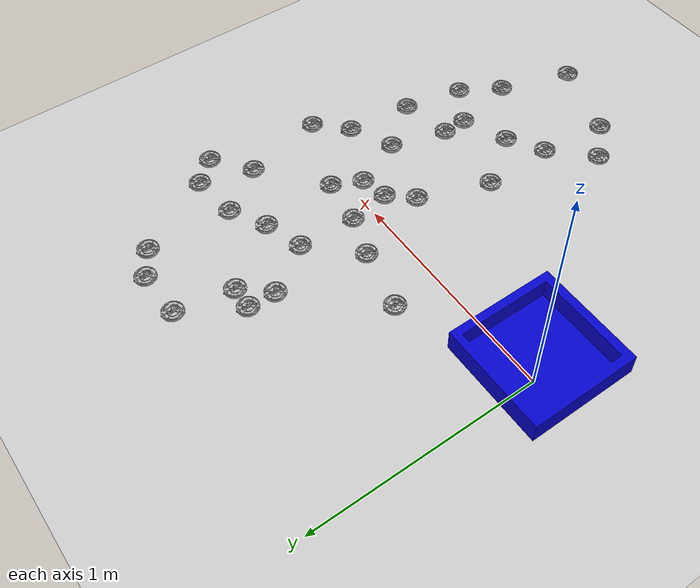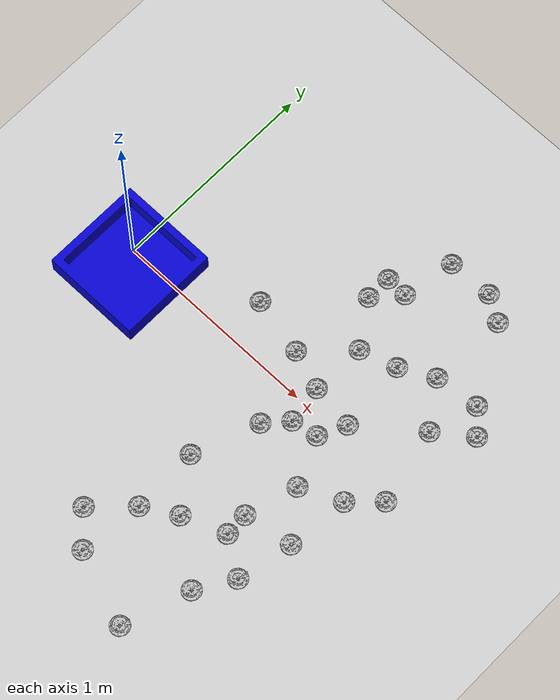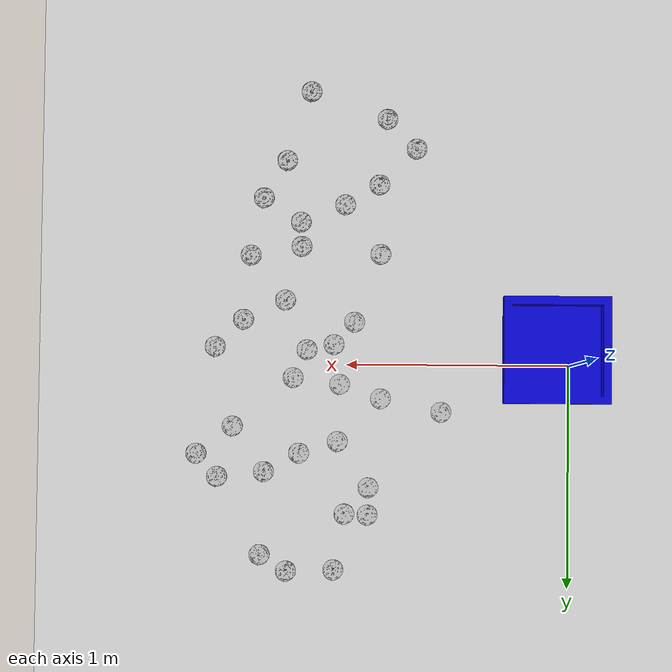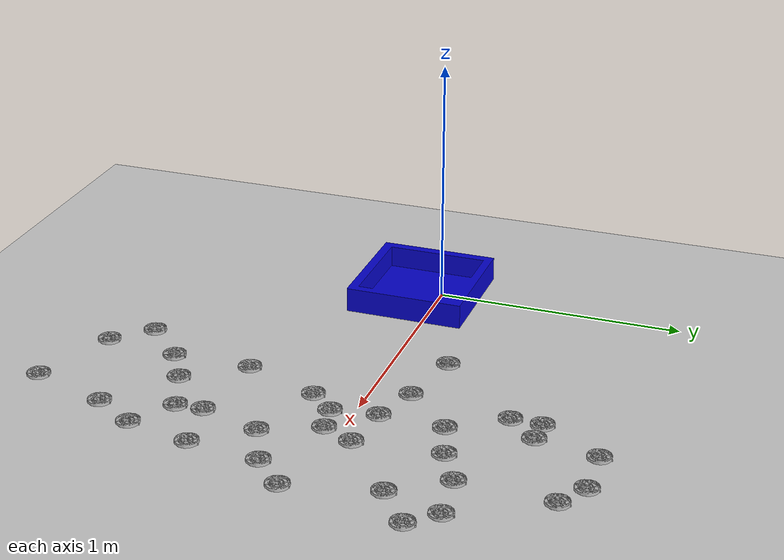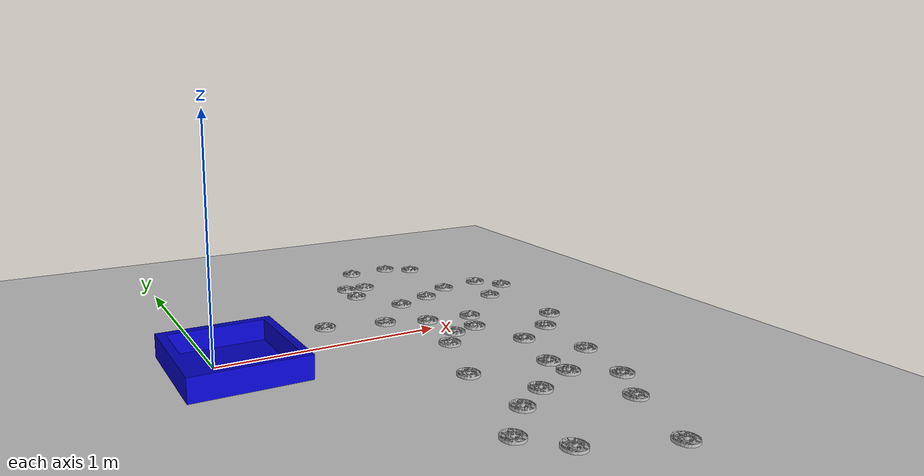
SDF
<sdf version="1.7">
 <world name="default">
  <light name="sun" type="directional">
   <pose>0 0 10 0 -0 0</pose>
   <diffuse>0.8 0.8 0.8 1</diffuse>
   <specular>0.2 0.2 0.2 1</specular>
   <attenuation>
    <range>1000</range>
    <constant>0.9</constant>
    <linear>0.01</linear>
    <quadratic>0.001</quadratic>
   </attenuation>
   <direction>-0.5 0.1 -0.9</direction>
   <spot><inner_angle>0</inner_angle><outer_angle>0</outer_angle><falloff>0</falloff></spot>
  </light>
  <model name="ground_plane">
   <static>1</static>
   <link name="link">
    <collision name="collision">
     <geometry><plane><normal>0 0 1</normal><size>100 100</size></plane></geometry>
     <surface>
      <contact><collide_bitmask>65535</collide_bitmask></contact>
      <friction><ode><mu>100</mu><mu2>50</mu2></ode></friction>
     </surface>
    </collision>
    <visual name="visual">
     <cast_shadows>0</cast_shadows>
     <geometry><plane><normal>0 0 1</normal><size>100 100</size></plane></geometry>
     <material>
      <script><uri>file://media/materials/scripts/gazebo.material</uri><name>Gazebo/Grey</name></script>
     </material>
    </visual>
   </link>
  </model>
  <gravity>0 0 -9.8</gravity>
  <magnetic_field>6e-06 2.3e-05 -4.2e-05</magnetic_field>
  <atmosphere type="adiabatic"/>
  <physics type="ode">
   <max_step_size>0.003</max_step_size>
   <real_time_factor>1</real_time_factor>
   <real_time_update_rate>1000</real_time_update_rate>
  </physics>
  <scene><ambient>0.4 0.4 0.4 1</ambient><background>0.7 0.7 0.7 1</background><shadows>1</shadows></scene>
  <spherical_coordinates>
   <surface_model>EARTH_WGS84</surface_model>
   <latitude_deg>0</latitude_deg>
   <longitude_deg>0</longitude_deg>
   <elevation>0</elevation>
   <heading_deg>0</heading_deg>
  </spherical_coordinates>
  <model name="object_box">
   <pose>0.056627 -0.071259 0 0 -0 0</pose>
   <static>1</static>
   <link name="object_box">
    <inertial>
     <mass>0.2</mass>
     <inertia><ixx>0.0005</ixx><ixy>0</ixy><ixz>0</ixz><iyy>0.0005</iyy><iyz>0</iyz><izz>0.0005</izz></inertia>
    </inertial>
    <collision name="collision">
     <geometry><mesh><uri>model://object_box/meshed/object_box_kai_kai.dae</uri></mesh></geometry>
    </collision>
    <visual name="visual">
     <geometry><mesh><uri>model://object_box/meshed/object_box_kai_kai.dae</uri></mesh></geometry>
    </visual>
   </link>
  </model>
  <model name="HV8">
   <pose>0.966227 -0.194012 -1e-05 -0.000249 0.000381 0.000315</pose>
   <static>0</static>
   <link name="HV8">
    <inertial>
     <mass>0.05</mass>
     <inertia><ixx>0.0002</ixx><ixy>0</ixy><ixz>0</ixz><iyy>0.0002</iyy><iyz>0</iyz><izz>0.0002</izz></inertia>
    </inertial>
    <collision name="collishin">
     <geometry><mesh><uri>model://HV8/meshes/HV8_1.stl</uri></mesh></geometry>
    </collision>
    <visual name="visual"><geometry><mesh><uri>model://HV8/meshes/HV8_1.stl</uri></mesh></geometry></visual>
   </link>
  </model>
  <model name="HV8_0">
   <pose>1.24139 0.059728 -1.8e-05 0.000274 0.000329 0.000149</pose>
   <static>0</static>
   <link name="HV8">
    <inertial>
     <mass>0.05</mass>
     <inertia><ixx>0.0002</ixx><ixy>0</ixy><ixz>0</ixz><iyy>0.0002</iyy><iyz>0</iyz><izz>0.0002</izz></inertia>
    </inertial>
    <collision name="collishin">
     <geometry><mesh><uri>model://HV8/meshes/HV8_1.stl</uri></mesh></geometry>
    </collision>
    <visual name="visual"><geometry><mesh><uri>model://HV8/meshes/HV8_1.stl</uri></mesh></geometry></visual>
   </link>
  </model>
  <model name="HV8_1">
   <pose>1.46883 -0.202969 3e-06 -0.000164 -2.7e-05 0.00015</pose>
   <static>0</static>
   <link name="HV8">
    <inertial>
     <mass>0.05</mass>
     <inertia><ixx>0.0002</ixx><ixy>0</ixy><ixz>0</ixz><iyy>0.0002</iyy><iyz>0</iyz><izz>0.0002</izz></inertia>
    </inertial>
    <collision name="collishin">
     <geometry><mesh><uri>model://HV8/meshes/HV8_1.stl</uri></mesh></geometry>
    </collision>
    <visual name="visual"><geometry><mesh><uri>model://HV8/meshes/HV8_1.stl</uri></mesh></geometry></visual>
   </link>
  </model>
  <model name="HV8_2">
   <pose>1.0578 -0.091795 3e-06 -0.000164 -2.7e-05 0.000146</pose>
   <static>0</static>
   <link name="HV8">
    <inertial>
     <mass>0.05</mass>
     <inertia><ixx>0.0002</ixx><ixy>0</ixy><ixz>0</ixz><iyy>0.0002</iyy><iyz>0</iyz><izz>0.0002</izz></inertia>
    </inertial>
    <collision name="collishin">
     <geometry><mesh><uri>model://HV8/meshes/HV8_1.stl</uri></mesh></geometry>
    </collision>
    <visual name="visual"><geometry><mesh><uri>model://HV8/meshes/HV8_1.stl</uri></mesh></geometry></visual>
   </link>
  </model>
  <model name="HV8_3">
   <pose>1.03087 0.088565 -1.8e-05 0.000274 0.000329 0.000147</pose>
   <static>0</static>
   <link name="HV8">
    <inertial>
     <mass>0.05</mass>
     <inertia><ixx>0.0002</ixx><ixy>0</ixy><ixz>0</ixz><iyy>0.0002</iyy><iyz>0</iyz><izz>0.0002</izz></inertia>
    </inertial>
    <collision name="collishin">
     <geometry><mesh><uri>model://HV8/meshes/HV8_1.stl</uri></mesh></geometry>
    </collision>
    <visual name="visual"><geometry><mesh><uri>model://HV8/meshes/HV8_1.stl</uri></mesh></geometry></visual>
   </link>
  </model>
  <model name="HV8_4">
   <pose>1.03885 0.345887 -1.8e-05 0.000274 0.000329 0.000146</pose>
   <static>0</static>
   <link name="HV8">
    <inertial>
     <mass>0.05</mass>
     <inertia><ixx>0.0002</ixx><ixy>0</ixy><ixz>0</ixz><iyy>0.0002</iyy><iyz>0</iyz><izz>0.0002</izz></inertia>
    </inertial>
    <collision name="collishin">
     <geometry><mesh><uri>model://HV8/meshes/HV8_1.stl</uri></mesh></geometry>
    </collision>
    <visual name="visual"><geometry><mesh><uri>model://HV8/meshes/HV8_1.stl</uri></mesh></geometry></visual>
   </link>
  </model>
  <model name="HV8_5">
   <pose>1.21285 0.399671 -2.8e-05 -0.000459 -0.000458 0.00031</pose>
   <static>0</static>
   <link name="HV8">
    <inertial>
     <mass>0.05</mass>
     <inertia><ixx>0.0002</ixx><ixy>0</ixy><ixz>0</ixz><iyy>0.0002</iyy><iyz>0</iyz><izz>0.0002</izz></inertia>
    </inertial>
    <collision name="collishin">
     <geometry><mesh><uri>model://HV8/meshes/HV8_1.stl</uri></mesh></geometry>
    </collision>
    <visual name="visual"><geometry><mesh><uri>model://HV8/meshes/HV8_1.stl</uri></mesh></geometry></visual>
   </link>
  </model>
  <model name="HV8_6">
   <pose>1.0059 0.671807 0 2.2e-05 9e-06 0.000309</pose>
   <static>0</static>
   <link name="HV8">
    <inertial>
     <mass>0.05</mass>
     <inertia><ixx>0.0002</ixx><ixy>0</ixy><ixz>0</ixz><iyy>0.0002</iyy><iyz>0</iyz><izz>0.0002</izz></inertia>
    </inertial>
    <collision name="collishin">
     <geometry><mesh><uri>model://HV8/meshes/HV8_1.stl</uri></mesh></geometry>
    </collision>
    <visual name="visual"><geometry><mesh><uri>model://HV8/meshes/HV8_1.stl</uri></mesh></geometry></visual>
   </link>
  </model>
  <model name="HV8_7">
   <pose>1.18035 -0.067422 -1.8e-05 0.000274 0.000329 0.000146</pose>
   <static>0</static>
   <link name="HV8">
    <inertial>
     <mass>0.05</mass>
     <inertia><ixx>0.0002</ixx><ixy>0</ixy><ixz>0</ixz><iyy>0.0002</iyy><iyz>0</iyz><izz>0.0002</izz></inertia>
    </inertial>
    <collision name="collishin">
     <geometry><mesh><uri>model://HV8/meshes/HV8_1.stl</uri></mesh></geometry>
    </collision>
    <visual name="visual"><geometry><mesh><uri>model://HV8/meshes/HV8_1.stl</uri></mesh></geometry></visual>
   </link>
  </model>
  <model name="HV8_8">
   <pose>1.27983 -0.291332 3e-06 -0.000164 -2.7e-05 0.000142</pose>
   <static>0</static>
   <link name="HV8">
    <inertial>
     <mass>0.05</mass>
     <inertia><ixx>0.0002</ixx><ixy>0</ixy><ixz>0</ixz><iyy>0.0002</iyy><iyz>0</iyz><izz>0.0002</izz></inertia>
    </inertial>
    <collision name="collishin">
     <geometry><mesh><uri>model://HV8/meshes/HV8_1.stl</uri></mesh></geometry>
    </collision>
    <visual name="visual"><geometry><mesh><uri>model://HV8/meshes/HV8_1.stl</uri></mesh></geometry></visual>
   </link>
  </model>
  <model name="HV8_9">
   <pose>1.208 -0.535877 -1.8e-05 0.000274 0.000329 0.000141</pose>
   <static>0</static>
   <link name="HV8">
    <inertial>
     <mass>0.05</mass>
     <inertia><ixx>0.0002</ixx><ixy>0</ixy><ixz>0</ixz><iyy>0.0002</iyy><iyz>0</iyz><izz>0.0002</izz></inertia>
    </inertial>
    <collision name="collishin">
     <geometry><mesh><uri>model://HV8/meshes/HV8_1.stl</uri></mesh></geometry>
    </collision>
    <visual name="visual"><geometry><mesh><uri>model://HV8/meshes/HV8_1.stl</uri></mesh></geometry></visual>
   </link>
  </model>
  <model name="HV8_10">
   <pose>1.01219 -0.72717 -1.1e-05 -0.000371 1.2e-05 0.000755</pose>
   <static>0</static>
   <link name="HV8">
    <inertial>
     <mass>0.05</mass>
     <inertia><ixx>0.0002</ixx><ixy>0</ixy><ixz>0</ixz><iyy>0.0002</iyy><iyz>0</iyz><izz>0.0002</izz></inertia>
    </inertial>
    <collision name="collishin">
     <geometry><mesh><uri>model://HV8/meshes/HV8_1.stl</uri></mesh></geometry>
    </collision>
    <visual name="visual"><geometry><mesh><uri>model://HV8/meshes/HV8_1.stl</uri></mesh></geometry></visual>
   </link>
  </model>
  <model name="HV8_11">
   <pose>0.857503 -0.819232 -1.8e-05 0.000274 0.000329 0.00014</pose>
   <static>0</static>
   <link name="HV8">
    <inertial>
     <mass>0.05</mass>
     <inertia><ixx>0.0002</ixx><ixy>0</ixy><ixz>0</ixz><iyy>0.0002</iyy><iyz>0</iyz><izz>0.0002</izz></inertia>
    </inertial>
    <collision name="collishin">
     <geometry><mesh><uri>model://HV8/meshes/HV8_1.stl</uri></mesh></geometry>
    </collision>
    <visual name="visual"><geometry><mesh><uri>model://HV8/meshes/HV8_1.stl</uri></mesh></geometry></visual>
   </link>
  </model>
  <model name="HV8_12">
   <pose>0.823624 -1.11982 -3e-06 -0.000159 7.4e-05 0.00014</pose>
   <static>0</static>
   <link name="HV8">
    <inertial>
     <mass>0.05</mass>
     <inertia><ixx>0.0002</ixx><ixy>0</ixy><ixz>0</ixz><iyy>0.0002</iyy><iyz>0</iyz><izz>0.0002</izz></inertia>
    </inertial>
    <collision name="collishin">
     <geometry><mesh><uri>model://HV8/meshes/HV8_1.stl</uri></mesh></geometry>
    </collision>
    <visual name="visual"><geometry><mesh><uri>model://HV8/meshes/HV8_1.stl</uri></mesh></geometry></visual>
   </link>
  </model>
  <model name="HV8_13">
   <pose>0.850432 -0.502522 3e-06 -0.000164 -2.7e-05 0.00014</pose>
   <static>0</static>
   <link name="HV8">
    <inertial>
     <mass>0.05</mass>
     <inertia><ixx>0.0002</ixx><ixy>0</ixy><ixz>0</ixz><iyy>0.0002</iyy><iyz>0</iyz><izz>0.0002</izz></inertia>
    </inertial>
    <collision name="collishin">
     <geometry><mesh><uri>model://HV8/meshes/HV8_1.stl</uri></mesh></geometry>
    </collision>
    <visual name="visual"><geometry><mesh><uri>model://HV8/meshes/HV8_1.stl</uri></mesh></geometry></visual>
   </link>
  </model>
  <model name="HV8_14">
   <pose>0.690557 -0.984416 -1.8e-05 0.000274 0.000329 0.00014</pose>
   <static>0</static>
   <link name="HV8">
    <inertial>
     <mass>0.05</mass>
     <inertia><ixx>0.0002</ixx><ixy>0</ixy><ixz>0</ixz><iyy>0.0002</iyy><iyz>0</iyz><izz>0.0002</izz></inertia>
    </inertial>
    <collision name="collishin">
     <geometry><mesh><uri>model://HV8/meshes/HV8_1.stl</uri></mesh></geometry>
    </collision>
    <visual name="visual"><geometry><mesh><uri>model://HV8/meshes/HV8_1.stl</uri></mesh></geometry></visual>
   </link>
  </model>
  <model name="HV8_15">
   <pose>1.17071 -1.24335 -3e-06 -0.000159 7.4e-05 0.000143</pose>
   <static>0</static>
   <link name="HV8">
    <inertial>
     <mass>0.05</mass>
     <inertia><ixx>0.0002</ixx><ixy>0</ixy><ixz>0</ixz><iyy>0.0002</iyy><iyz>0</iyz><izz>0.0002</izz></inertia>
    </inertial>
    <collision name="collishin">
     <geometry><mesh><uri>model://HV8/meshes/HV8_1.stl</uri></mesh></geometry>
    </collision>
    <visual name="visual"><geometry><mesh><uri>model://HV8/meshes/HV8_1.stl</uri></mesh></geometry></visual>
   </link>
  </model>
  <model name="HV8_16">
   <pose>1.27754 -0.927165 3e-06 -0.000164 -2.7e-05 0.000139</pose>
   <static>0</static>
   <link name="HV8">
    <inertial>
     <mass>0.05</mass>
     <inertia><ixx>0.0002</ixx><ixy>0</ixy><ixz>0</ixz><iyy>0.0002</iyy><iyz>0</iyz><izz>0.0002</izz></inertia>
    </inertial>
    <collision name="collishin">
     <geometry><mesh><uri>model://HV8/meshes/HV8_1.stl</uri></mesh></geometry>
    </collision>
    <visual name="visual"><geometry><mesh><uri>model://HV8/meshes/HV8_1.stl</uri></mesh></geometry></visual>
   </link>
  </model>
  <model name="HV8_17">
   <pose>1.59517 -0.078593 -1.8e-05 0.000274 0.000329 0.00014</pose>
   <static>0</static>
   <link name="HV8">
    <inertial>
     <mass>0.05</mass>
     <inertia><ixx>0.0002</ixx><ixy>0</ixy><ixz>0</ixz><iyy>0.0002</iyy><iyz>0</iyz><izz>0.0002</izz></inertia>
    </inertial>
    <collision name="collishin">
     <geometry><mesh><uri>model://HV8/meshes/HV8_1.stl</uri></mesh></geometry>
    </collision>
    <visual name="visual"><geometry><mesh><uri>model://HV8/meshes/HV8_1.stl</uri></mesh></geometry></visual>
   </link>
  </model>
  <model name="HV8_18">
   <pose>1.51375 0.280086 -3e-06 -0.000159 7.4e-05 0.000139</pose>
   <static>0</static>
   <link name="HV8">
    <inertial>
     <mass>0.05</mass>
     <inertia><ixx>0.0002</ixx><ixy>0</ixy><ixz>0</ixz><iyy>0.0002</iyy><iyz>0</iyz><izz>0.0002</izz></inertia>
    </inertial>
    <collision name="collishin">
     <geometry><mesh><uri>model://HV8/meshes/HV8_1.stl</uri></mesh></geometry>
    </collision>
    <visual name="visual"><geometry><mesh><uri>model://HV8/meshes/HV8_1.stl</uri></mesh></geometry></visual>
   </link>
  </model>
  <model name="HV8_19">
   <pose>1.38524 0.856791 3e-06 -0.000164 -2.7e-05 0.000138</pose>
   <static>0</static>
   <link name="HV8">
    <inertial>
     <mass>0.05</mass>
     <inertia><ixx>0.0002</ixx><ixy>0</ixy><ixz>0</ixz><iyy>0.0002</iyy><iyz>0</iyz><izz>0.0002</izz></inertia>
    </inertial>
    <collision name="collishin">
     <geometry><mesh><uri>model://HV8/meshes/HV8_1.stl</uri></mesh></geometry>
    </collision>
    <visual name="visual"><geometry><mesh><uri>model://HV8/meshes/HV8_1.stl</uri></mesh></geometry></visual>
   </link>
  </model>
  <model name="HV8_20">
   <pose>0.898923 0.552644 3e-06 -0.000164 -2.7e-05 0.000138</pose>
   <static>0</static>
   <link name="HV8">
    <inertial>
     <mass>0.05</mass>
     <inertia><ixx>0.0002</ixx><ixy>0</ixy><ixz>0</ixz><iyy>0.0002</iyy><iyz>0</iyz><izz>0.0002</izz></inertia>
    </inertial>
    <collision name="collishin">
     <geometry><mesh><uri>model://HV8/meshes/HV8_1.stl</uri></mesh></geometry>
    </collision>
    <visual name="visual"><geometry><mesh><uri>model://HV8/meshes/HV8_1.stl</uri></mesh></geometry></visual>
   </link>
  </model>
  <model name="HV8_21">
   <pose>0.901744 0.675301 3e-06 -0.000164 -2.7e-05 0.000137</pose>
   <static>0</static>
   <link name="HV8">
    <inertial>
     <mass>0.05</mass>
     <inertia><ixx>0.0002</ixx><ixy>0</ixy><ixz>0</ixz><iyy>0.0002</iyy><iyz>0</iyz><izz>0.0002</izz></inertia>
    </inertial>
    <collision name="collishin">
     <geometry><mesh><uri>model://HV8/meshes/HV8_1.stl</uri></mesh></geometry>
    </collision>
    <visual name="visual"><geometry><mesh><uri>model://HV8/meshes/HV8_1.stl</uri></mesh></geometry></visual>
   </link>
  </model>
  <model name="HV8_22">
   <pose>1.05283 0.922069 -3e-06 -0.000159 7.4e-05 0.000137</pose>
   <static>0</static>
   <link name="HV8">
    <inertial>
     <mass>0.05</mass>
     <inertia><ixx>0.0002</ixx><ixy>0</ixy><ixz>0</ixz><iyy>0.0002</iyy><iyz>0</iyz><izz>0.0002</izz></inertia>
    </inertial>
    <collision name="collishin">
     <geometry><mesh><uri>model://HV8/meshes/HV8_1.stl</uri></mesh></geometry>
    </collision>
    <visual name="visual"><geometry><mesh><uri>model://HV8/meshes/HV8_1.stl</uri></mesh></geometry></visual>
   </link>
  </model>
  <model name="HV8_23">
   <pose>1.37027 0.483873 -2.6e-05 -0.000404 0.000871 0.000698</pose>
   <static>0</static>
   <link name="HV8">
    <inertial>
     <mass>0.05</mass>
     <inertia><ixx>0.0002</ixx><ixy>0</ixy><ixz>0</ixz><iyy>0.0002</iyy><iyz>0</iyz><izz>0.0002</izz></inertia>
    </inertial>
    <collision name="collishin">
     <geometry><mesh><uri>model://HV8/meshes/HV8_1.stl</uri></mesh></geometry>
    </collision>
    <visual name="visual"><geometry><mesh><uri>model://HV8/meshes/HV8_1.stl</uri></mesh></geometry></visual>
   </link>
  </model>
  <model name="HV8_24">
   <pose>1.67618 0.403951 3e-06 -0.000164 -2.7e-05 0.000137</pose>
   <static>0</static>
   <link name="HV8">
    <inertial>
     <mass>0.05</mass>
     <inertia><ixx>0.0002</ixx><ixy>0</ixy><ixz>0</ixz><iyy>0.0002</iyy><iyz>0</iyz><izz>0.0002</izz></inertia>
    </inertial>
    <collision name="collishin">
     <geometry><mesh><uri>model://HV8/meshes/HV8_1.stl</uri></mesh></geometry>
    </collision>
    <visual name="visual"><geometry><mesh><uri>model://HV8/meshes/HV8_1.stl</uri></mesh></geometry></visual>
   </link>
  </model>
  <model name="HV8_25">
   <pose>1.58128 0.507633 3e-06 -0.000164 -2.7e-05 0.000138</pose>
   <static>0</static>
   <link name="HV8">
    <inertial>
     <mass>0.05</mass>
     <inertia><ixx>0.0002</ixx><ixy>0</ixy><ixz>0</ixz><iyy>0.0002</iyy><iyz>0</iyz><izz>0.0002</izz></inertia>
    </inertial>
    <collision name="collishin">
     <geometry><mesh><uri>model://HV8/meshes/HV8_1.stl</uri></mesh></geometry>
    </collision>
    <visual name="visual"><geometry><mesh><uri>model://HV8/meshes/HV8_1.stl</uri></mesh></geometry></visual>
   </link>
  </model>
  <model name="HV8_26">
   <pose>1.2128 -0.646281 -3e-06 -0.000159 7.4e-05 0.000138</pose>
   <static>0</static>
   <link name="HV8">
    <inertial>
     <mass>0.05</mass>
     <inertia><ixx>0.0002</ixx><ixy>0</ixy><ixz>0</ixz><iyy>0.0002</iyy><iyz>0</iyz><izz>0.0002</izz></inertia>
    </inertial>
    <collision name="collishin">
     <geometry><mesh><uri>model://HV8/meshes/HV8_1.stl</uri></mesh></geometry>
    </collision>
    <visual name="visual"><geometry><mesh><uri>model://HV8/meshes/HV8_1.stl</uri></mesh></geometry></visual>
   </link>
  </model>
  <model name="HV8_27">
   <pose>1.38193 -0.756126 -3e-06 -0.000159 7.4e-05 0.000137</pose>
   <static>0</static>
   <link name="HV8">
    <inertial>
     <mass>0.05</mass>
     <inertia><ixx>0.0002</ixx><ixy>0</ixy><ixz>0</ixz><iyy>0.0002</iyy><iyz>0</iyz><izz>0.0002</izz></inertia>
    </inertial>
    <collision name="collishin">
     <geometry><mesh><uri>model://HV8/meshes/HV8_1.stl</uri></mesh></geometry>
    </collision>
    <visual name="visual"><geometry><mesh><uri>model://HV8/meshes/HV8_1.stl</uri></mesh></geometry></visual>
   </link>
  </model>
  <model name="HV8_28">
   <pose>1.4379 -0.494375 -1e-05 -0.000249 0.000381 0.000301</pose>
   <static>0</static>
   <link name="HV8">
    <inertial>
     <mass>0.05</mass>
     <inertia><ixx>0.0002</ixx><ixy>0</ixy><ixz>0</ixz><iyy>0.0002</iyy><iyz>0</iyz><izz>0.0002</izz></inertia>
    </inertial>
    <collision name="collishin">
     <geometry><mesh><uri>model://HV8/meshes/HV8_1.stl</uri></mesh></geometry>
    </collision>
    <visual name="visual"><geometry><mesh><uri>model://HV8/meshes/HV8_1.stl</uri></mesh></geometry></visual>
   </link>
  </model>
  <model name="HV8_29">
   <pose>0.84591 0.151576 -1.8e-05 0.000274 0.000329 0.000136</pose>
   <static>0</static>
   <link name="HV8">
    <inertial>
     <mass>0.05</mass>
     <inertia><ixx>0.0002</ixx><ixy>0</ixy><ixz>0</ixz><iyy>0.0002</iyy><iyz>0</iyz><izz>0.0002</izz></inertia>
    </inertial>
    <collision name="collishin">
     <geometry><mesh><uri>model://HV8/meshes/HV8_1.stl</uri></mesh></geometry>
    </collision>
    <visual name="visual"><geometry><mesh><uri>model://HV8/meshes/HV8_1.stl</uri></mesh></geometry></visual>
   </link>
  </model>
  <model name="HV8_30">
   <pose>0.572959 0.210231 -3e-06 -0.000159 7.4e-05 0.000138</pose>
   <static>0</static>
   <link name="HV8">
    <inertial>
     <mass>0.05</mass>
     <inertia><ixx>0.0002</ixx><ixy>0</ixy><ixz>0</ixz><iyy>0.0002</iyy><iyz>0</iyz><izz>0.0002</izz></inertia>
    </inertial>
    <collision name="collishin">
     <geometry><mesh><uri>model://HV8/meshes/HV8_1.stl</uri></mesh></geometry>
    </collision>
    <visual name="visual"><geometry><mesh><uri>model://HV8/meshes/HV8_1.stl</uri></mesh></geometry></visual>
   </link>
  </model>
  <model name="HV8_31">
   <pose>1.26625 0.929202 3e-06 -0.000164 -2.7e-05 0.000141</pose>
   <static>0</static>
   <link name="HV8">
    <inertial>
     <mass>0.05</mass>
     <inertia><ixx>0.0002</ixx><ixy>0</ixy><ixz>0</ixz><iyy>0.0002</iyy><iyz>0</iyz><izz>0.0002</izz></inertia>
    </inertial>
    <collision name="collishin">
     <geometry><mesh><uri>model://HV8/meshes/HV8_1.stl</uri></mesh></geometry>
    </collision>
    <visual name="visual"><geometry><mesh><uri>model://HV8/meshes/HV8_1.stl</uri></mesh></geometry></visual>
   </link>
  </model>
 </world>
</sdf>
